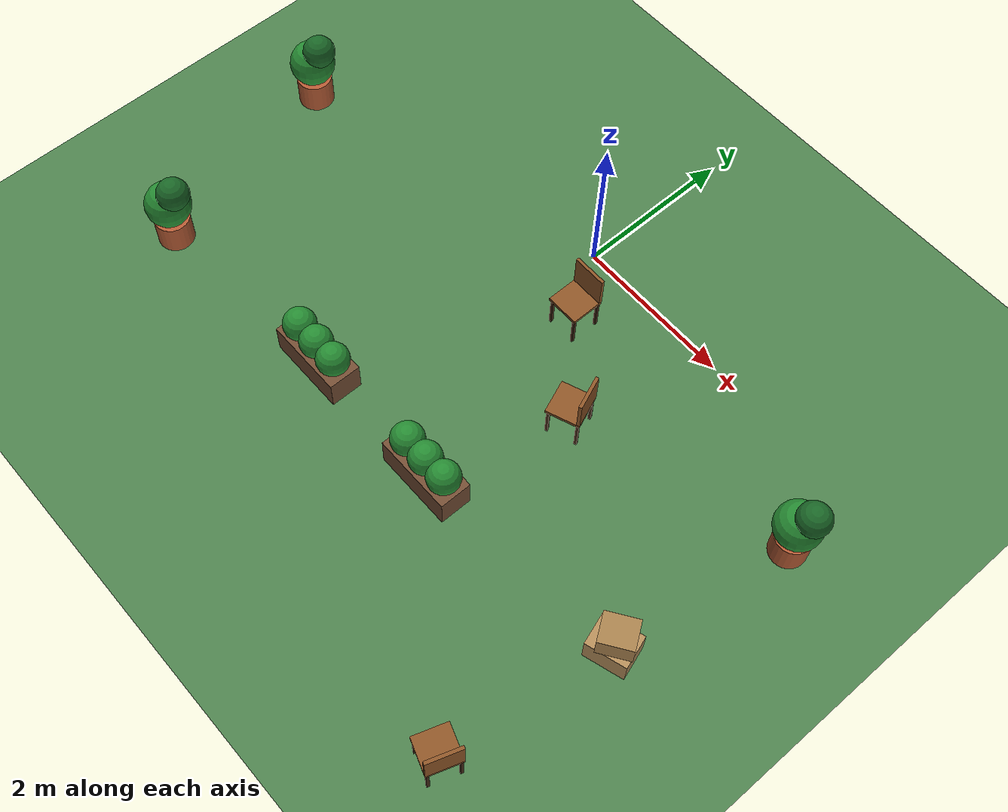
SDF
<sdf version="1.5">
 <world name="default">
  <model name="ground_plane">
   <static>true</static>
   <link name="link">
    <collision name="collision">
     <geometry><plane><normal>0 0 1</normal><size>100 100</size></plane></geometry>
    </collision>
    <visual name="visual">
     <geometry><plane><normal>0 0 1</normal><size>100 100</size></plane></geometry>
     <material>
      <ambient>0.3 0.5 0.3 1</ambient>
      <diffuse>0.3 0.5 0.3 1</diffuse>
      <specular>0.1 0.1 0.1 1</specular>
     </material>
    </visual>
   </link>
  </model>
  <model name="chair_t1_n">
   <static>true</static>
   <pose>0.5 -0.8 0 0 0 0</pose>
   <link name="link">
    <visual name="seat">
     <pose>0 0 0.45 0 0 0</pose>
     <geometry><box><size>0.42 0.42 0.04</size></box></geometry>
     <material><ambient>0.55 0.33 0.15 1</ambient><diffuse>0.55 0.33 0.15 1</diffuse></material>
    </visual>
    <visual name="back">
     <pose>0 0.19 0.68 0 0 0</pose>
     <geometry><box><size>0.42 0.04 0.42</size></box></geometry>
     <material><ambient>0.55 0.33 0.15 1</ambient><diffuse>0.55 0.33 0.15 1</diffuse></material>
    </visual>
    <visual name="leg0">
     <pose>0.18 0.18 0.215 0 0 0</pose>
     <geometry><box><size>0.035 0.035 0.43</size></box></geometry>
     <material><ambient>0.25 0.15 0.08 1</ambient><diffuse>0.25 0.15 0.08 1</diffuse></material>
    </visual>
    <visual name="leg1">
     <pose>-0.18 0.18 0.215 0 0 0</pose>
     <geometry><box><size>0.035 0.035 0.43</size></box></geometry>
     <material><ambient>0.25 0.15 0.08 1</ambient><diffuse>0.25 0.15 0.08 1</diffuse></material>
    </visual>
    <visual name="leg2">
     <pose>0.18 -0.18 0.215 0 0 0</pose>
     <geometry><box><size>0.035 0.035 0.43</size></box></geometry>
     <material><ambient>0.25 0.15 0.08 1</ambient><diffuse>0.25 0.15 0.08 1</diffuse></material>
    </visual>
    <visual name="leg3">
     <pose>-0.18 -0.18 0.215 0 0 0</pose>
     <geometry><box><size>0.035 0.035 0.43</size></box></geometry>
     <material><ambient>0.25 0.15 0.08 1</ambient><diffuse>0.25 0.15 0.08 1</diffuse></material>
    </visual>
    <collision name="collision">
     <pose>0 0 0.45 0 0 0</pose>
     <geometry><box><size>0.44 0.44 0.9</size></box></geometry>
    </collision>
   </link>
  </model>
  <model name="chair_t1_e">
   <static>true</static>
   <pose>1.45 -1.75 0 0 0 -1.2</pose>
   <link name="link">
    <visual name="seat">
     <pose>0 0 0.45 0 0 0</pose>
     <geometry><box><size>0.42 0.42 0.04</size></box></geometry>
     <material><ambient>0.55 0.33 0.15 1</ambient><diffuse>0.55 0.33 0.15 1</diffuse></material>
    </visual>
    <visual name="back">
     <pose>0 0.19 0.68 0 0 0</pose>
     <geometry><box><size>0.42 0.04 0.42</size></box></geometry>
     <material><ambient>0.55 0.33 0.15 1</ambient><diffuse>0.55 0.33 0.15 1</diffuse></material>
    </visual>
    <visual name="leg0">
     <pose>0.18 0.18 0.215 0 0 0</pose>
     <geometry><box><size>0.035 0.035 0.43</size></box></geometry>
     <material><ambient>0.25 0.15 0.08 1</ambient><diffuse>0.25 0.15 0.08 1</diffuse></material>
    </visual>
    <visual name="leg1">
     <pose>-0.18 0.18 0.215 0 0 0</pose>
     <geometry><box><size>0.035 0.035 0.43</size></box></geometry>
     <material><ambient>0.25 0.15 0.08 1</ambient><diffuse>0.25 0.15 0.08 1</diffuse></material>
    </visual>
    <visual name="leg2">
     <pose>0.18 -0.18 0.215 0 0 0</pose>
     <geometry><box><size>0.035 0.035 0.43</size></box></geometry>
     <material><ambient>0.25 0.15 0.08 1</ambient><diffuse>0.25 0.15 0.08 1</diffuse></material>
    </visual>
    <visual name="leg3">
     <pose>-0.18 -0.18 0.215 0 0 0</pose>
     <geometry><box><size>0.035 0.035 0.43</size></box></geometry>
     <material><ambient>0.25 0.15 0.08 1</ambient><diffuse>0.25 0.15 0.08 1</diffuse></material>
    </visual>
    <collision name="collision">
     <pose>0 0 0.45 0 0 0</pose>
     <geometry><box><size>0.44 0.44 0.9</size></box></geometry>
    </collision>
   </link>
  </model>
  <model name="chair_t2_e">
   <static>true</static>
   <pose>3.4 -5.3 0 0 0 -1.9</pose>
   <link name="link">
    <visual name="seat">
     <pose>0 0 0.45 0 0 0</pose>
     <geometry><box><size>0.42 0.42 0.04</size></box></geometry>
     <material><ambient>0.55 0.33 0.15 1</ambient><diffuse>0.55 0.33 0.15 1</diffuse></material>
    </visual>
    <visual name="back">
     <pose>0 0.19 0.68 0 0 0</pose>
     <geometry><box><size>0.42 0.04 0.42</size></box></geometry>
     <material><ambient>0.55 0.33 0.15 1</ambient><diffuse>0.55 0.33 0.15 1</diffuse></material>
    </visual>
    <visual name="leg0">
     <pose>0.18 0.18 0.215 0 0 0</pose>
     <geometry><box><size>0.035 0.035 0.43</size></box></geometry>
     <material><ambient>0.25 0.15 0.08 1</ambient><diffuse>0.25 0.15 0.08 1</diffuse></material>
    </visual>
    <visual name="leg1">
     <pose>-0.18 0.18 0.215 0 0 0</pose>
     <geometry><box><size>0.035 0.035 0.43</size></box></geometry>
     <material><ambient>0.25 0.15 0.08 1</ambient><diffuse>0.25 0.15 0.08 1</diffuse></material>
    </visual>
    <visual name="leg2">
     <pose>0.18 -0.18 0.215 0 0 0</pose>
     <geometry><box><size>0.035 0.035 0.43</size></box></geometry>
     <material><ambient>0.25 0.15 0.08 1</ambient><diffuse>0.25 0.15 0.08 1</diffuse></material>
    </visual>
    <visual name="leg3">
     <pose>-0.18 -0.18 0.215 0 0 0</pose>
     <geometry><box><size>0.035 0.035 0.43</size></box></geometry>
     <material><ambient>0.25 0.15 0.08 1</ambient><diffuse>0.25 0.15 0.08 1</diffuse></material>
    </visual>
    <collision name="collision">
     <pose>0 0 0.45 0 0 0</pose>
     <geometry><box><size>0.44 0.44 0.9</size></box></geometry>
    </collision>
   </link>
  </model>
  <model name="plant1">
   <static>true</static>
   <pose>-4.1 -1.0 0 0 0 0</pose>
   <link name="link">
    <visual name="pot">
     <pose>0 0 0.2 0 0 0</pose>
     <geometry><cylinder><radius>0.22</radius><length>0.4</length></cylinder></geometry>
     <material><ambient>0.7 0.35 0.2 1</ambient><diffuse>0.7 0.35 0.2 1</diffuse></material>
    </visual>
    <visual name="leaf1">
     <pose>0 0 0.65 0 0 0</pose>
     <geometry><sphere><radius>0.28</radius></sphere></geometry>
     <material><ambient>0.15 0.55 0.2 1</ambient><diffuse>0.15 0.55 0.2 1</diffuse></material>
    </visual>
    <visual name="leaf2">
     <pose>0.1 0.05 0.9 0 0 0</pose>
     <geometry><sphere><radius>0.2</radius></sphere></geometry>
     <material><ambient>0.1 0.4 0.15 1</ambient><diffuse>0.1 0.4 0.15 1</diffuse></material>
    </visual>
    <collision name="collision">
     <pose>0 0 0.45 0 0 0</pose>
     <geometry><cylinder><radius>0.27</radius><length>0.9</length></cylinder></geometry>
    </collision>
   </link>
  </model>
  <model name="plant2">
   <static>true</static>
   <pose>4.1 -1.0 0 0 0 0</pose>
   <link name="link">
    <visual name="pot">
     <pose>0 0 0.2 0 0 0</pose>
     <geometry><cylinder><radius>0.22</radius><length>0.4</length></cylinder></geometry>
     <material><ambient>0.7 0.35 0.2 1</ambient><diffuse>0.7 0.35 0.2 1</diffuse></material>
    </visual>
    <visual name="leaf1">
     <pose>0 0 0.65 0 0 0</pose>
     <geometry><sphere><radius>0.28</radius></sphere></geometry>
     <material><ambient>0.15 0.55 0.2 1</ambient><diffuse>0.15 0.55 0.2 1</diffuse></material>
    </visual>
    <visual name="leaf2">
     <pose>0.1 0.05 0.9 0 0 0</pose>
     <geometry><sphere><radius>0.2</radius></sphere></geometry>
     <material><ambient>0.1 0.4 0.15 1</ambient><diffuse>0.1 0.4 0.15 1</diffuse></material>
    </visual>
    <collision name="collision">
     <pose>0 0 0.45 0 0 0</pose>
     <geometry><cylinder><radius>0.27</radius><length>0.9</length></cylinder></geometry>
    </collision>
   </link>
  </model>
  <model name="plant5">
   <static>true</static>
   <pose>-3.5 -3.6 0 0 0 0</pose>
   <link name="link">
    <visual name="pot">
     <pose>0 0 0.2 0 0 0</pose>
     <geometry><cylinder><radius>0.22</radius><length>0.4</length></cylinder></geometry>
     <material><ambient>0.7 0.35 0.2 1</ambient><diffuse>0.7 0.35 0.2 1</diffuse></material>
    </visual>
    <visual name="leaf1">
     <pose>0 0 0.65 0 0 0</pose>
     <geometry><sphere><radius>0.28</radius></sphere></geometry>
     <material><ambient>0.15 0.55 0.2 1</ambient><diffuse>0.15 0.55 0.2 1</diffuse></material>
    </visual>
    <visual name="leaf2">
     <pose>0.1 0.05 0.9 0 0 0</pose>
     <geometry><sphere><radius>0.2</radius></sphere></geometry>
     <material><ambient>0.1 0.4 0.15 1</ambient><diffuse>0.1 0.4 0.15 1</diffuse></material>
    </visual>
    <collision name="collision">
     <pose>0 0 0.45 0 0 0</pose>
     <geometry><cylinder><radius>0.27</radius><length>0.9</length></cylinder></geometry>
    </collision>
   </link>
  </model>
  <model name="planter_left">
   <static>true</static>
   <pose>-0.95 -3.4 0 0 0 0</pose>
   <link name="link">
    <visual name="box">
     <pose>0 0 0.2 0 0 0</pose>
     <geometry><box><size>1.0 0.4 0.4</size></box></geometry>
     <material><ambient>0.45 0.3 0.2 1</ambient><diffuse>0.45 0.3 0.2 1</diffuse></material>
    </visual>
    <visual name="bush0">
     <pose>-0.3 0 0.55 0 0 0</pose>
     <geometry><sphere><radius>0.2</radius></sphere></geometry>
     <material><ambient>0.15 0.55 0.2 1</ambient><diffuse>0.15 0.55 0.2 1</diffuse></material>
    </visual>
    <visual name="bush1">
     <pose>0 0 0.55 0 0 0</pose>
     <geometry><sphere><radius>0.2</radius></sphere></geometry>
     <material><ambient>0.15 0.55 0.2 1</ambient><diffuse>0.15 0.55 0.2 1</diffuse></material>
    </visual>
    <visual name="bush2">
     <pose>0.3 0 0.55 0 0 0</pose>
     <geometry><sphere><radius>0.2</radius></sphere></geometry>
     <material><ambient>0.15 0.55 0.2 1</ambient><diffuse>0.15 0.55 0.2 1</diffuse></material>
    </visual>
    <collision name="collision">
     <pose>0 0 0.4 0 0 0</pose>
     <geometry><box><size>1.0 0.4 0.8</size></box></geometry>
    </collision>
   </link>
  </model>
  <model name="planter_right">
   <static>true</static>
   <pose>0.95 -3.4 0 0 0 0</pose>
   <link name="link">
    <visual name="box">
     <pose>0 0 0.2 0 0 0</pose>
     <geometry><box><size>1.0 0.4 0.4</size></box></geometry>
     <material><ambient>0.45 0.3 0.2 1</ambient><diffuse>0.45 0.3 0.2 1</diffuse></material>
    </visual>
    <visual name="bush0">
     <pose>-0.3 0 0.55 0 0 0</pose>
     <geometry><sphere><radius>0.2</radius></sphere></geometry>
     <material><ambient>0.15 0.55 0.2 1</ambient><diffuse>0.15 0.55 0.2 1</diffuse></material>
    </visual>
    <visual name="bush1">
     <pose>0 0 0.55 0 0 0</pose>
     <geometry><sphere><radius>0.2</radius></sphere></geometry>
     <material><ambient>0.15 0.55 0.2 1</ambient><diffuse>0.15 0.55 0.2 1</diffuse></material>
    </visual>
    <visual name="bush2">
     <pose>0.3 0 0.55 0 0 0</pose>
     <geometry><sphere><radius>0.2</radius></sphere></geometry>
     <material><ambient>0.15 0.55 0.2 1</ambient><diffuse>0.15 0.55 0.2 1</diffuse></material>
    </visual>
    <collision name="collision">
     <pose>0 0 0.4 0 0 0</pose>
     <geometry><box><size>1.0 0.4 0.8</size></box></geometry>
    </collision>
   </link>
  </model>
  <model name="delivery_boxes">
   <static>true</static>
   <pose>3.7 -3.2 0 0 0 0.3</pose>
   <link name="link">
    <visual name="b1">
     <pose>0 0 0.175 0 0 0</pose>
     <geometry><box><size>0.5 0.4 0.35</size></box></geometry>
     <material><ambient>0.7 0.55 0.35 1</ambient><diffuse>0.7 0.55 0.35 1</diffuse></material>
    </visual>
    <visual name="b2">
     <pose>0.02 0 0.5 0 0 0.3</pose>
     <geometry><box><size>0.4 0.35 0.3</size></box></geometry>
     <material><ambient>0.65 0.5 0.3 1</ambient><diffuse>0.65 0.5 0.3 1</diffuse></material>
    </visual>
    <collision name="collision">
     <pose>0 0 0.325 0 0 0</pose>
     <geometry><box><size>0.52 0.42 0.65</size></box></geometry>
    </collision>
   </link>
  </model>
 </world>
</sdf>
